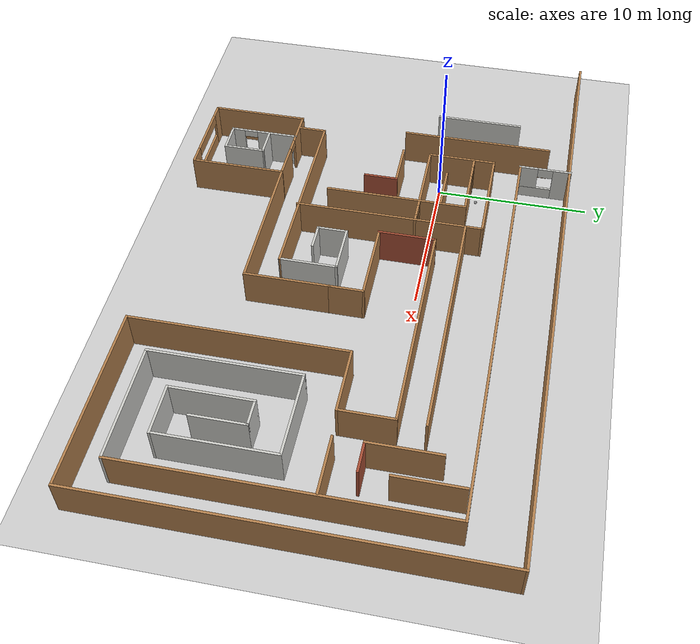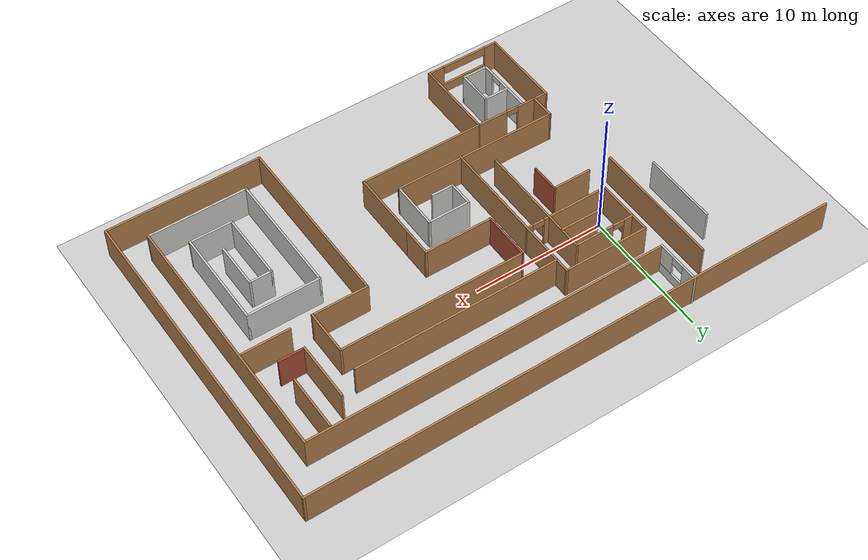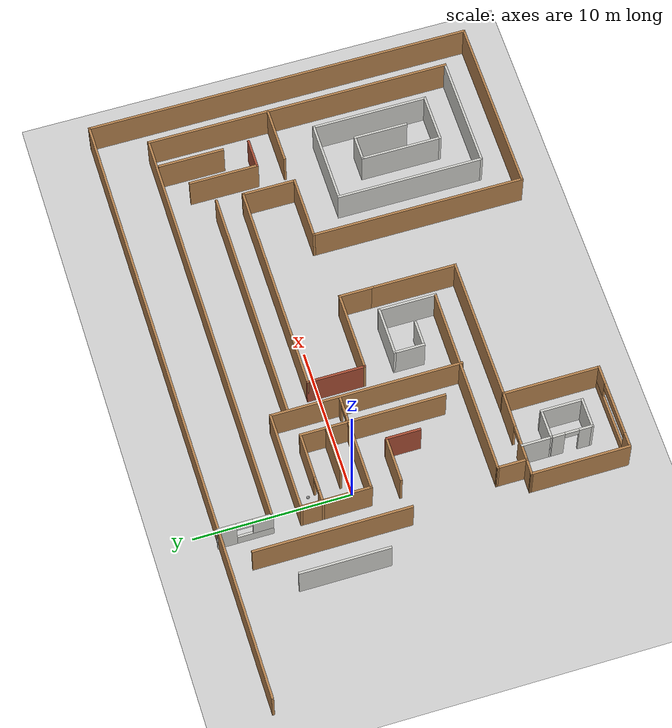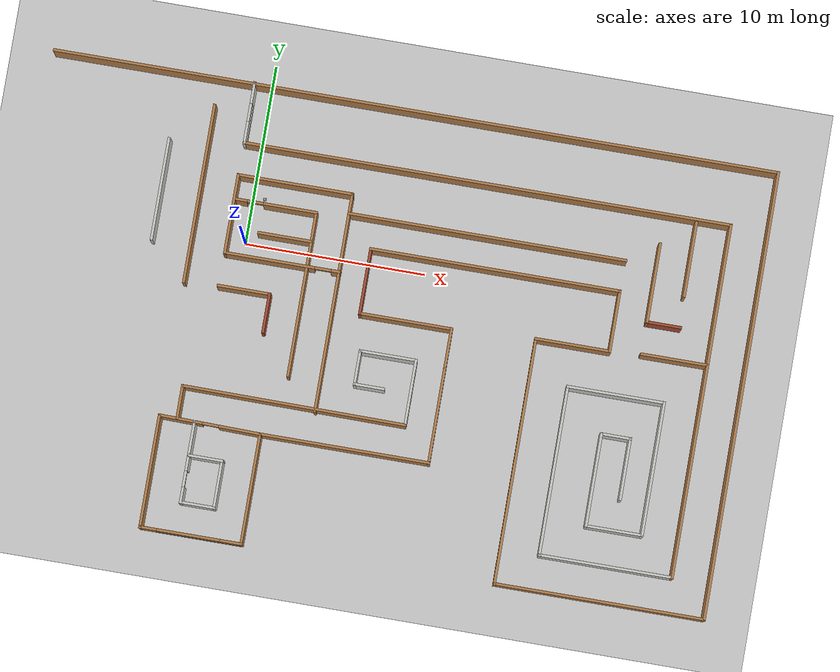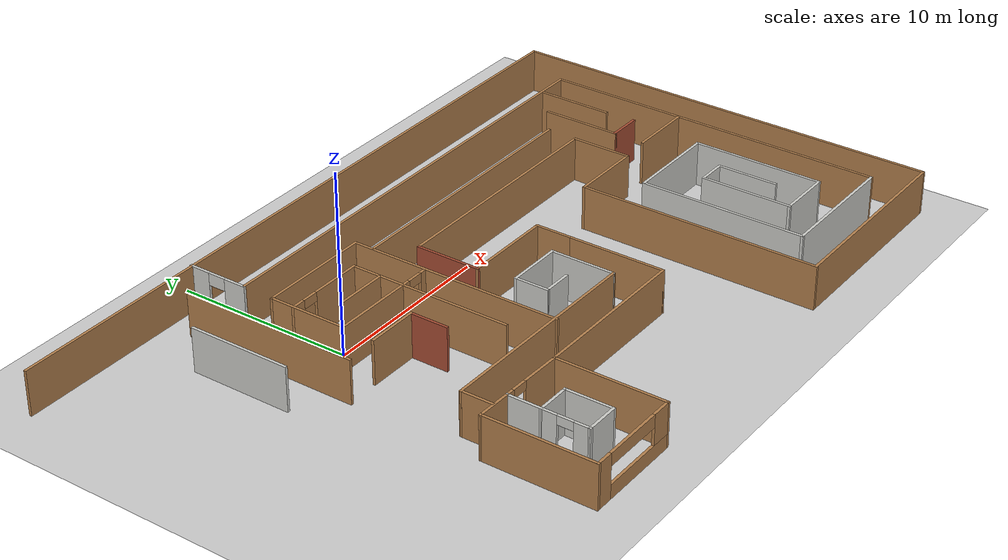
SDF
<sdf version="1.6">
 <world name="default">
  <model name="ground_plane">
   <static>1</static>
   <link name="link">
    <collision name="collision">
     <geometry><plane><normal>0 0 1</normal><size>100 100</size></plane></geometry>
     <surface><friction><ode><mu>100</mu><mu2>50</mu2></ode></friction></surface>
    </collision>
    <visual name="visual">
     <cast_shadows>0</cast_shadows>
     <geometry><plane><normal>0 0 1</normal><size>100 100</size></plane></geometry>
     <material>
      <script><uri>file://media/materials/scripts/gazebo.material</uri><name>Gazebo/Grey</name></script>
     </material>
    </visual>
   </link>
  </model>
  <model name="Building">
   <pose>5.7189 -2.01548 0 0 -0 0</pose>
   <link name="Wall_10">
    <collision name="Wall_10_Collision">
     <geometry><box><size>14 0.15 2.5</size></box></geometry>
     <pose>0 0 1.25 0 -0 0</pose>
    </collision>
    <visual name="Wall_10_Visual">
     <pose>0 0 1.25 0 -0 0</pose>
     <geometry><box><size>14 0.15 2.5</size></box></geometry>
     <material>
      <script><uri>file://media/materials/scripts/gazebo.material</uri><name>Gazebo/Wood</name></script>
      <ambient>1 1 1 1</ambient>
     </material>
     <meta><layer>0</layer></meta>
    </visual>
    <pose>8.10018 2.69968 0 0 -0 0</pose>
   </link>
   <link name="Wall_11">
    <collision name="Wall_11_Collision">
     <geometry><box><size>3.5 0.15 2.5</size></box></geometry>
     <pose>0 0 1.25 0 -0 0</pose>
    </collision>
    <visual name="Wall_11_Visual">
     <pose>0 0 1.25 0 -0 0</pose>
     <geometry><box><size>3.5 0.15 2.5</size></box></geometry>
     <material>
      <script><uri>file://media/materials/scripts/gazebo.material</uri><name>Gazebo/Wood</name></script>
      <ambient>1 1 1 1</ambient>
     </material>
     <meta><layer>0</layer></meta>
    </visual>
    <pose>15.0252 1.02468 0 0 0 -1.5708</pose>
   </link>
   <link name="Wall_12">
    <collision name="Wall_12_Collision">
     <geometry><box><size>4.25 0.15 2.5</size></box></geometry>
     <pose>0 0 1.25 0 -0 0</pose>
    </collision>
    <visual name="Wall_12_Visual">
     <pose>0 0 1.25 0 -0 0</pose>
     <geometry><box><size>4.25 0.15 2.5</size></box></geometry>
     <material>
      <script><uri>file://media/materials/scripts/gazebo.material</uri><name>Gazebo/Wood</name></script>
      <ambient>1 1 1 1</ambient>
     </material>
     <meta><layer>0</layer></meta>
    </visual>
    <pose>12.9752 -0.650318 0 0 -0 3.14159</pose>
   </link>
   <link name="Wall_13">
    <collision name="Wall_13_Collision">
     <geometry><box><size>13.75 0.15 2.5</size></box></geometry>
     <pose>0 0 1.25 0 -0 0</pose>
    </collision>
    <visual name="Wall_13_Visual">
     <pose>0 0 1.25 0 -0 0</pose>
     <geometry><box><size>13.75 0.15 2.5</size></box></geometry>
     <material>
      <script><uri>file://media/materials/scripts/gazebo.material</uri><name>Gazebo/Wood</name></script>
      <ambient>1 1 1 1</ambient>
     </material>
     <meta><layer>0</layer></meta>
    </visual>
    <pose>10.9252 -7.45032 0 0 0 -1.5708</pose>
   </link>
   <link name="Wall_14">
    <collision name="Wall_14_Collision">
     <geometry><box><size>11.75 0.15 2.5</size></box></geometry>
     <pose>0 0 1.25 0 -0 0</pose>
    </collision>
    <visual name="Wall_14_Visual">
     <pose>0 0 1.25 0 -0 0</pose>
     <geometry><box><size>11.75 0.15 2.5</size></box></geometry>
     <material>
      <script><uri>file://media/materials/scripts/gazebo.material</uri><name>Gazebo/Wood</name></script>
      <ambient>1 1 1 1</ambient>
     </material>
     <meta><layer>0</layer></meta>
    </visual>
    <pose>16.7252 -14.2503 0 0 -0 0</pose>
   </link>
   <link name="Wall_15">
    <collision name="Wall_15_Collision">
     <geometry><box><size>25 0.15 2.5</size></box></geometry>
     <pose>0 0 1.25 0 -0 0</pose>
    </collision>
    <visual name="Wall_15_Visual">
     <pose>0 0 1.25 0 -0 0</pose>
     <geometry><box><size>25 0.15 2.5</size></box></geometry>
     <material>
      <script><uri>file://media/materials/scripts/gazebo.material</uri><name>Gazebo/Wood</name></script>
      <ambient>1 1 1 1</ambient>
     </material>
     <meta><layer>0</layer></meta>
    </visual>
    <pose>22.5252 -1.82532 0 0 -0 1.5708</pose>
   </link>
   <link name="Wall_16">
    <collision name="Wall_16_Collision">
     <geometry><box><size>40.5 0.15 2.5</size></box></geometry>
     <pose>0 0 1.25 0 -0 0</pose>
    </collision>
    <visual name="Wall_16_Visual">
     <pose>0 0 1.25 0 -0 0</pose>
     <geometry><box><size>40.5 0.15 2.5</size></box></geometry>
     <material>
      <script><uri>file://media/materials/scripts/gazebo.material</uri><name>Gazebo/Wood</name></script>
      <ambient>1 1 1 1</ambient>
     </material>
     <meta><layer>0</layer></meta>
    </visual>
    <pose>2.35024 10.5999 0 0 -0 3.14158</pose>
   </link>
   <link name="Wall_2">
    <collision name="Wall_2_Collision">
     <geometry><box><size>6.35342 0.15 2.5</size></box></geometry>
     <pose>0 0 1.25 0 -0 0</pose>
    </collision>
    <visual name="Wall_2_Visual">
     <pose>0 0 1.25 0 -0 0</pose>
     <geometry><box><size>6.35342 0.15 2.5</size></box></geometry>
     <material>
      <script><uri>file://media/materials/scripts/gazebo.material</uri><name>Gazebo/Wood</name></script>
      <ambient>1 1 1 1</ambient>
     </material>
     <meta><layer>0</layer></meta>
    </visual>
    <pose>-8.6747 -11.3484 0 0 0 -1.5708</pose>
   </link>
   <link name="Wall_22">
    <pose>-5.87476 -8.29861 0 0 -0 3.12313</pose>
    <visual name="Wall_22_Visual_0">
     <pose>-1.68319 0 1.25 0 -0 0</pose>
     <geometry><box><size>2.38444 0.15 2.5</size></box></geometry>
     <material>
      <script><uri>file://media/materials/scripts/gazebo.material</uri><name>Gazebo/Wood</name></script>
      <ambient>1 1 1 1</ambient>
     </material>
     <meta><layer>0</layer></meta>
    </visual>
    <collision name="Wall_22_Collision_0">
     <geometry><box><size>2.38444 0.15 2.5</size></box></geometry>
     <pose>-1.68319 0 1.25 0 -0 0</pose>
    </collision>
    <visual name="Wall_22_Visual_1">
     <pose>1.64222 0 1.25 0 -0 0</pose>
     <geometry><box><size>2.46639 0.15 2.5</size></box></geometry>
     <material>
      <script><uri>file://media/materials/scripts/gazebo.material</uri><name>Gazebo/Wood</name></script>
      <ambient>1 1 1 1</ambient>
     </material>
     <meta><layer>0</layer></meta>
    </visual>
    <collision name="Wall_22_Collision_1">
     <geometry><box><size>2.46639 0.15 2.5</size></box></geometry>
     <pose>1.64222 0 1.25 0 -0 0</pose>
    </collision>
    <visual name="Wall_22_Visual_2">
     <pose>-0.040973 0 2.25 0 -0 0</pose>
     <geometry><box><size>0.9 0.15 0.5</size></box></geometry>
     <material>
      <script><uri>file://media/materials/scripts/gazebo.material</uri><name>Gazebo/Wood</name></script>
      <ambient>1 1 1 1</ambient>
     </material>
     <meta><layer>0</layer></meta>
    </visual>
    <collision name="Wall_22_Collision_2">
     <geometry><box><size>0.9 0.15 0.5</size></box></geometry>
     <pose>-0.040973 0 2.25 0 -0 0</pose>
    </collision>
   </link>
   <link name="Wall_24">
    <collision name="Wall_24_Collision">
     <geometry><box><size>2 0.15 2.5</size></box></geometry>
     <pose>0 0 1.25 0 -0 0</pose>
    </collision>
    <visual name="Wall_24_Visual">
     <pose>0 0 1.25 0 -0 0</pose>
     <geometry><box><size>2 0.15 2.5</size></box></geometry>
     <material>
      <script><uri>file://media/materials/scripts/gazebo.material</uri><name>Gazebo/CeilingTiled</name></script>
      <ambient>1 1 1 1</ambient>
     </material>
     <meta><layer>0</layer></meta>
    </visual>
    <pose>-6.7275 -9.22377 0 0 0 -1.57101</pose>
   </link>
   <link name="Wall_25">
    <collision name="Wall_25_Collision">
     <geometry><box><size>2 0.15 2.5</size></box></geometry>
     <pose>0 0 1.25 0 -0 0</pose>
    </collision>
    <visual name="Wall_25_Visual">
     <pose>0 0 1.25 0 -0 0</pose>
     <geometry><box><size>2 0.15 2.5</size></box></geometry>
     <material>
      <script><uri>file://media/materials/scripts/gazebo.material</uri><name>Gazebo/CeilingTiled</name></script>
      <ambient>1 1 1 1</ambient>
     </material>
     <meta><layer>0</layer></meta>
    </visual>
    <pose>-5.8027 -10.1489 0 0 -0 0</pose>
   </link>
   <link name="Wall_27">
    <collision name="Wall_27_Collision">
     <geometry><box><size>2.75 0.15 2.5</size></box></geometry>
     <pose>0 0 1.25 0 -0 0</pose>
    </collision>
    <visual name="Wall_27_Visual">
     <pose>0 0 1.25 0 -0 0</pose>
     <geometry><box><size>2.75 0.15 2.5</size></box></geometry>
     <material>
      <script><uri>file://media/materials/scripts/gazebo.material</uri><name>Gazebo/CeilingTiled</name></script>
      <ambient>1 1 1 1</ambient>
     </material>
     <meta><layer>0</layer></meta>
    </visual>
    <pose>-4.8775 -11.4488 0 0 0 -1.57064</pose>
   </link>
   <link name="Wall_28">
    <collision name="Wall_28_Collision">
     <geometry><box><size>2.0004 0.15 2.5</size></box></geometry>
     <pose>0 0 1.25 0 -0 0</pose>
    </collision>
    <visual name="Wall_28_Visual">
     <pose>0 0 1.25 0 -0 0</pose>
     <geometry><box><size>2.0004 0.15 2.5</size></box></geometry>
     <material>
      <script><uri>file://media/materials/scripts/gazebo.material</uri><name>Gazebo/CeilingTiled</name></script>
      <ambient>1 1 1 1</ambient>
     </material>
     <meta><layer>0</layer></meta>
    </visual>
    <pose>-5.8025 -12.7488 0 0 0 -3.14146</pose>
   </link>
   <link name="Wall_29">
    <pose>-6.7277 -11.4489 0 0 -0 1.5708</pose>
    <visual name="Wall_29_Visual_0">
     <pose>-0.915206 0 1.25 0 -0 0</pose>
     <geometry><box><size>0.919835 0.15 2.5</size></box></geometry>
     <material>
      <script><uri>file://media/materials/scripts/gazebo.material</uri><name>Gazebo/CeilingTiled</name></script>
      <ambient>1 1 1 1</ambient>
     </material>
     <meta><layer>0</layer></meta>
    </visual>
    <collision name="Wall_29_Collision_0">
     <geometry><box><size>0.919835 0.15 2.5</size></box></geometry>
     <pose>-0.915206 0 1.25 0 -0 0</pose>
    </collision>
    <visual name="Wall_29_Visual_1">
     <pose>0.909917 0 1.25 0 -0 0</pose>
     <geometry><box><size>0.930411 0.15 2.5</size></box></geometry>
     <material>
      <script><uri>file://media/materials/scripts/gazebo.material</uri><name>Gazebo/CeilingTiled</name></script>
      <ambient>1 1 1 1</ambient>
     </material>
     <meta><layer>0</layer></meta>
    </visual>
    <collision name="Wall_29_Collision_1">
     <geometry><box><size>0.930411 0.15 2.5</size></box></geometry>
     <pose>0.909917 0 1.25 0 -0 0</pose>
    </collision>
    <visual name="Wall_29_Visual_2">
     <pose>-0.005288 0 2.25 0 -0 0</pose>
     <geometry><box><size>0.9 0.15 0.5</size></box></geometry>
     <material>
      <script><uri>file://media/materials/scripts/gazebo.material</uri><name>Gazebo/CeilingTiled</name></script>
      <ambient>1 1 1 1</ambient>
     </material>
     <meta><layer>0</layer></meta>
    </visual>
    <collision name="Wall_29_Collision_2">
     <geometry><box><size>0.9 0.15 0.5</size></box></geometry>
     <pose>-0.005288 0 2.25 0 -0 0</pose>
    </collision>
   </link>
   <link name="Wall_3">
    <pose>-5.8747 -14.4499 0 0 -0 0</pose>
    <visual name="Wall_3_Visual_0">
     <pose>-2.37464 0 1.25 0 -0 0</pose>
     <geometry><box><size>1.00072 0.15 2.5</size></box></geometry>
     <material>
      <script><uri>file://media/materials/scripts/gazebo.material</uri><name>Gazebo/Wood</name></script>
      <ambient>1 1 1 1</ambient>
     </material>
     <meta><layer>0</layer></meta>
    </visual>
    <collision name="Wall_3_Collision_0">
     <geometry><box><size>1.00072 0.15 2.5</size></box></geometry>
     <pose>-2.37464 0 1.25 0 -0 0</pose>
    </collision>
    <visual name="Wall_3_Visual_1">
     <pose>0.50036 0 0.4 0 -0 0</pose>
     <geometry><box><size>4.74928 0.15 0.8</size></box></geometry>
     <material>
      <script><uri>file://media/materials/scripts/gazebo.material</uri><name>Gazebo/Wood</name></script>
      <ambient>1 1 1 1</ambient>
     </material>
     <meta><layer>0</layer></meta>
    </visual>
    <collision name="Wall_3_Collision_1">
     <geometry><box><size>4.74928 0.15 0.8</size></box></geometry>
     <pose>0.50036 0 0.4 0 -0 0</pose>
    </collision>
    <visual name="Wall_3_Visual_2">
     <pose>2.25036 0 1.65 0 -0 0</pose>
     <geometry><box><size>1.24928 0.15 1.7</size></box></geometry>
     <material>
      <script><uri>file://media/materials/scripts/gazebo.material</uri><name>Gazebo/Wood</name></script>
      <ambient>1 1 1 1</ambient>
     </material>
     <meta><layer>0</layer></meta>
    </visual>
    <collision name="Wall_3_Collision_2">
     <geometry><box><size>1.24928 0.15 1.7</size></box></geometry>
     <pose>2.25036 0 1.65 0 -0 0</pose>
    </collision>
    <visual name="Wall_3_Visual_3">
     <pose>-0.124281 0 2.15 0 -0 0</pose>
     <geometry><box><size>3.5 0.15 0.7</size></box></geometry>
     <material>
      <script><uri>file://media/materials/scripts/gazebo.material</uri><name>Gazebo/Wood</name></script>
      <ambient>1 1 1 1</ambient>
     </material>
     <meta><layer>0</layer></meta>
    </visual>
    <collision name="Wall_3_Collision_3">
     <geometry><box><size>3.5 0.15 0.7</size></box></geometry>
     <pose>-0.124281 0 2.15 0 -0 0</pose>
    </collision>
   </link>
   <link name="Wall_31">
    <collision name="Wall_31_Collision">
     <geometry><box><size>1.94917 0.15 2.5</size></box></geometry>
     <pose>0 0 1.25 0 -0 0</pose>
    </collision>
    <visual name="Wall_31_Visual">
     <pose>0 0 1.25 0 -0 0</pose>
     <geometry><box><size>1.94917 0.15 2.5</size></box></geometry>
     <material>
      <script><uri>file://media/materials/scripts/gazebo.material</uri><name>Gazebo/Wood</name></script>
      <ambient>1 1 1 1</ambient>
     </material>
     <meta><layer>0</layer></meta>
    </visual>
    <pose>-7.6987 -7.3474 0 0 -0 1.5708</pose>
   </link>
   <link name="Wall_32">
    <collision name="Wall_32_Collision">
     <geometry><box><size>12.5011 0.15 2.5</size></box></geometry>
     <pose>0 0 1.25 0 -0 0</pose>
    </collision>
    <visual name="Wall_32_Visual">
     <pose>0 0 1.25 0 -0 0</pose>
     <geometry><box><size>12.5011 0.15 2.5</size></box></geometry>
     <material>
      <script><uri>file://media/materials/scripts/gazebo.material</uri><name>Gazebo/Wood</name></script>
      <ambient>1 1 1 1</ambient>
     </material>
     <meta><layer>0</layer></meta>
    </visual>
    <pose>-1.52347 -6.48873 0 0 0 -0.006612</pose>
   </link>
   <link name="Wall_33">
    <collision name="Wall_33_Collision">
     <geometry><box><size>3.75 0.15 2.5</size></box></geometry>
     <pose>0 0 1.25 0 -0 0</pose>
    </collision>
    <visual name="Wall_33_Visual">
     <pose>0 0 1.25 0 -0 0</pose>
     <geometry><box><size>3.75 0.15 2.5</size></box></geometry>
     <material>
      <script><uri>file://media/materials/scripts/gazebo.material</uri><name>Gazebo/CeilingTiled</name></script>
      <ambient>1 1 1 1</ambient>
     </material>
     <meta><layer>0</layer></meta>
    </visual>
    <pose>4.65177 -4.72956 0 0 -0 1.5708</pose>
   </link>
   <link name="Wall_34">
    <collision name="Wall_34_Collision">
     <geometry><box><size>3.25 0.15 2.5</size></box></geometry>
     <pose>0 0 1.25 0 -0 0</pose>
    </collision>
    <visual name="Wall_34_Visual">
     <pose>0 0 1.25 0 -0 0</pose>
     <geometry><box><size>3.25 0.15 2.5</size></box></geometry>
     <material>
      <script><uri>file://media/materials/scripts/gazebo.material</uri><name>Gazebo/CeilingTiled</name></script>
      <ambient>1 1 1 1</ambient>
     </material>
     <meta><layer>0</layer></meta>
    </visual>
    <pose>3.10177 -2.92956 0 0 -0 3.14159</pose>
   </link>
   <link name="Wall_35">
    <collision name="Wall_35_Collision">
     <geometry><box><size>2 0.15 2.5</size></box></geometry>
     <pose>0 0 1.25 0 -0 0</pose>
    </collision>
    <visual name="Wall_35_Visual">
     <pose>0 0 1.25 0 -0 0</pose>
     <geometry><box><size>2 0.15 2.5</size></box></geometry>
     <material>
      <script><uri>file://media/materials/scripts/gazebo.material</uri><name>Gazebo/CeilingTiled</name></script>
      <ambient>1 1 1 1</ambient>
     </material>
     <meta><layer>0</layer></meta>
    </visual>
    <pose>1.55177 -3.85456 0 0 0 -1.5708</pose>
   </link>
   <link name="Wall_36">
    <collision name="Wall_36_Collision">
     <geometry><box><size>1.75 0.15 2.5</size></box></geometry>
     <pose>0 0 1.25 0 -0 0</pose>
    </collision>
    <visual name="Wall_36_Visual">
     <pose>0 0 1.25 0 -0 0</pose>
     <geometry><box><size>1.75 0.15 2.5</size></box></geometry>
     <material>
      <script><uri>file://media/materials/scripts/gazebo.material</uri><name>Gazebo/CeilingTiled</name></script>
      <ambient>1 1 1 1</ambient>
     </material>
     <meta><layer>0</layer></meta>
    </visual>
    <pose>2.35177 -4.77956 0 0 -0 0</pose>
   </link>
   <link name="Wall_38">
    <collision name="Wall_38_Collision">
     <geometry><box><size>12.25 0.15 2.5</size></box></geometry>
     <pose>0 0 1.25 0 -0 0</pose>
    </collision>
    <visual name="Wall_38_Visual">
     <pose>0 0 1.25 0 -0 0</pose>
     <geometry><box><size>12.25 0.15 2.5</size></box></geometry>
     <material>
      <script><uri>file://media/materials/scripts/gazebo.material</uri><name>Gazebo/Wood</name></script>
      <ambient>1 1 1 1</ambient>
     </material>
     <meta><layer>0</layer></meta>
    </visual>
    <pose>-0.3357 -0.549898 0 0 -0 1.5708</pose>
   </link>
   <link name="Wall_39">
    <collision name="Wall_39_Collision">
     <geometry><box><size>6.5 0.15 2.5</size></box></geometry>
     <pose>0 0 1.25 0 -0 0</pose>
    </collision>
    <visual name="Wall_39_Visual">
     <pose>0 0 1.25 0 -0 0</pose>
     <geometry><box><size>6.5 0.15 2.5</size></box></geometry>
     <material>
      <script><uri>file://media/materials/scripts/gazebo.material</uri><name>Gazebo/Wood</name></script>
      <ambient>1 1 1 1</ambient>
     </material>
     <meta><layer>0</layer></meta>
    </visual>
    <pose>-3.51051 5.50029 0 0 -0 3.14153</pose>
   </link>
   <link name="Wall_4">
    <collision name="Wall_4_Collision">
     <geometry><box><size>6.25 0.15 2.5</size></box></geometry>
     <pose>0 0 1.25 0 -0 0</pose>
    </collision>
    <visual name="Wall_4_Visual">
     <pose>0 0 1.25 0 -0 0</pose>
     <geometry><box><size>6.25 0.15 2.5</size></box></geometry>
     <material>
      <script><uri>file://media/materials/scripts/gazebo.material</uri><name>Gazebo/Wood</name></script>
      <ambient>1 1 1 1</ambient>
     </material>
     <meta><layer>0</layer></meta>
    </visual>
    <pose>-3.07476 -11.4001 0 0 -0 1.57082</pose>
   </link>
   <link name="Wall_40">
    <collision name="Wall_40_Collision">
     <geometry><box><size>4.5 0.15 2.5</size></box></geometry>
     <pose>0 0 1.25 0 -0 0</pose>
    </collision>
    <visual name="Wall_40_Visual">
     <pose>0 0 1.25 0 -0 0</pose>
     <geometry><box><size>4.5 0.15 2.5</size></box></geometry>
     <material>
      <script><uri>file://media/materials/scripts/gazebo.material</uri><name>Gazebo/Wood</name></script>
      <ambient>1 1 1 1</ambient>
     </material>
     <meta><layer>0</layer></meta>
    </visual>
    <pose>-6.68532 3.32548 0 0 0 -1.5708</pose>
   </link>
   <link name="Wall_41">
    <pose>-3.51032 1.15048 0 0 -0 0</pose>
    <visual name="Wall_41_Visual_0">
     <pose>-0.707511 0 1.25 0 -0 0</pose>
     <geometry><box><size>5.08498 0.15 2.5</size></box></geometry>
     <material>
      <script><uri>file://media/materials/scripts/gazebo.material</uri><name>Gazebo/Wood</name></script>
      <ambient>1 1 1 1</ambient>
     </material>
     <meta><layer>0</layer></meta>
    </visual>
    <collision name="Wall_41_Collision_0">
     <geometry><box><size>5.08498 0.15 2.5</size></box></geometry>
     <pose>-0.707511 0 1.25 0 -0 0</pose>
    </collision>
    <visual name="Wall_41_Visual_1">
     <pose>2.99249 0 1.25 0 -0 0</pose>
     <geometry><box><size>0.515021 0.15 2.5</size></box></geometry>
     <material>
      <script><uri>file://media/materials/scripts/gazebo.material</uri><name>Gazebo/Wood</name></script>
      <ambient>1 1 1 1</ambient>
     </material>
     <meta><layer>0</layer></meta>
    </visual>
    <collision name="Wall_41_Collision_1">
     <geometry><box><size>0.515021 0.15 2.5</size></box></geometry>
     <pose>2.99249 0 1.25 0 -0 0</pose>
    </collision>
    <visual name="Wall_41_Visual_2">
     <pose>2.28498 0 2.25 0 -0 0</pose>
     <geometry><box><size>0.9 0.15 0.5</size></box></geometry>
     <material>
      <script><uri>file://media/materials/scripts/gazebo.material</uri><name>Gazebo/Wood</name></script>
      <ambient>1 1 1 1</ambient>
     </material>
     <meta><layer>0</layer></meta>
    </visual>
    <collision name="Wall_41_Collision_2">
     <geometry><box><size>0.9 0.15 0.5</size></box></geometry>
     <pose>2.28498 0 2.25 0 -0 0</pose>
    </collision>
   </link>
   <link name="Wall_43">
    <collision name="Wall_43_Collision">
     <geometry><box><size>9.25 0.15 2.5</size></box></geometry>
     <pose>0 0 1.25 0 -0 0</pose>
    </collision>
    <visual name="Wall_43_Visual">
     <pose>0 0 1.25 0 -0 0</pose>
     <geometry><box><size>9.25 0.15 2.5</size></box></geometry>
     <material>
      <script><uri>file://media/materials/scripts/gazebo.material</uri><name>Gazebo/Wood</name></script>
      <ambient>1 1 1 1</ambient>
     </material>
     <meta><layer>0</layer></meta>
    </visual>
    <pose>-2.1157 -0.387898 0 0 0 -1.5708</pose>
   </link>
   <link name="Wall_47">
    <collision name="Wall_47_Collision">
     <geometry><box><size>3 0.15 2.5</size></box></geometry>
     <pose>0 0 1.25 0 -0 0</pose>
    </collision>
    <visual name="Wall_47_Visual">
     <pose>0 0 1.25 0 -0 0</pose>
     <geometry><box><size>3 0.15 2.5</size></box></geometry>
     <material>
      <script><uri>file://media/materials/scripts/gazebo.material</uri><name>Gazebo/Wood</name></script>
      <ambient>1 1 1 1</ambient>
     </material>
     <meta><layer>0</layer></meta>
    </visual>
    <pose>-3.60317 2.54344 0 0 -0 0</pose>
   </link>
   <link name="Wall_5">
    <collision name="Wall_5_Collision">
     <geometry><box><size>9.5 0.15 2.5</size></box></geometry>
     <pose>0 0 1.25 0 -0 0</pose>
    </collision>
    <visual name="Wall_5_Visual">
     <pose>0 0 1.25 0 -0 0</pose>
     <geometry><box><size>9.5 0.15 2.5</size></box></geometry>
     <material>
      <script><uri>file://media/materials/scripts/gazebo.material</uri><name>Gazebo/Wood</name></script>
      <ambient>1 1 1 1</ambient>
     </material>
     <meta><layer>0</layer></meta>
    </visual>
    <pose>1.60018 -8.35032 0 0 -0 0</pose>
   </link>
   <link name="Wall_50">
    <pose>-4.4007 4.1621 0 0 -0 3.14159</pose>
    <visual name="Wall_50_Visual_0">
     <pose>-0.848534 0 1.25 0 -0 0</pose>
     <geometry><box><size>3.02293 0.15 2.5</size></box></geometry>
     <material>
      <script><uri>file://media/materials/scripts/gazebo.material</uri><name>Gazebo/Wood</name></script>
      <ambient>1 1 1 1</ambient>
     </material>
     <meta><layer>0</layer></meta>
    </visual>
    <collision name="Wall_50_Collision_0">
     <geometry><box><size>3.02293 0.15 2.5</size></box></geometry>
     <pose>-0.848534 0 1.25 0 -0 0</pose>
    </collision>
    <visual name="Wall_50_Visual_1">
     <pose>1.96147 0 1.25 0 -0 0</pose>
     <geometry><box><size>0.797068 0.15 2.5</size></box></geometry>
     <material>
      <script><uri>file://media/materials/scripts/gazebo.material</uri><name>Gazebo/Wood</name></script>
      <ambient>1 1 1 1</ambient>
     </material>
     <meta><layer>0</layer></meta>
    </visual>
    <collision name="Wall_50_Collision_1">
     <geometry><box><size>0.797068 0.15 2.5</size></box></geometry>
     <pose>1.96147 0 1.25 0 -0 0</pose>
    </collision>
    <visual name="Wall_50_Visual_2">
     <pose>1.11293 0 2.25 0 -0 0</pose>
     <geometry><box><size>0.9 0.15 0.5</size></box></geometry>
     <material>
      <script><uri>file://media/materials/scripts/gazebo.material</uri><name>Gazebo/Wood</name></script>
      <ambient>1 1 1 1</ambient>
     </material>
     <meta><layer>0</layer></meta>
    </visual>
    <collision name="Wall_50_Collision_2">
     <geometry><box><size>0.9 0.15 0.5</size></box></geometry>
     <pose>1.11293 0 2.25 0 -0 0</pose>
    </collision>
   </link>
   <link name="Wall_54">
    <collision name="Wall_54_Collision">
     <geometry><box><size>3 0.15 2.5</size></box></geometry>
     <pose>0 0 1.25 0 -0 0</pose>
    </collision>
    <visual name="Wall_54_Visual">
     <pose>0 0 1.25 0 -0 0</pose>
     <geometry><box><size>3 0.15 2.5</size></box></geometry>
     <material>
      <script><uri>file://media/materials/scripts/gazebo.material</uri><name>Gazebo/Wood</name></script>
      <ambient>1 1 1 1</ambient>
     </material>
     <meta><layer>0</layer></meta>
    </visual>
    <pose>-5.3023 -0.693004 0 0 -0 0</pose>
   </link>
   <link name="Wall_55">
    <collision name="Wall_55_Collision">
     <geometry><box><size>2.25 0.15 2.5</size></box></geometry>
     <pose>0 0 1.25 0 -0 0</pose>
    </collision>
    <visual name="Wall_55_Visual">
     <pose>0 0 1.25 0 -0 0</pose>
     <geometry><box><size>2.25 0.15 2.5</size></box></geometry>
     <material>
      <script><uri>file://media/materials/scripts/gazebo.material</uri><name>Gazebo/Bricks</name></script>
      <ambient>1 1 1 1</ambient>
     </material>
     <meta><layer>0</layer></meta>
    </visual>
    <pose>-3.8773 -1.743 0 0 0 -1.5708</pose>
   </link>
   <link name="Wall_59">
    <collision name="Wall_59_Collision">
     <geometry><box><size>10 0.15 2.5</size></box></geometry>
     <pose>0 0 1.25 0 -0 0</pose>
    </collision>
    <visual name="Wall_59_Visual">
     <pose>0 0 1.25 0 -0 0</pose>
     <geometry><box><size>10 0.15 2.5</size></box></geometry>
     <material>
      <script><uri>file://media/materials/scripts/gazebo.material</uri><name>Gazebo/Wood</name></script>
      <ambient>1 1 1 1</ambient>
     </material>
     <meta><layer>0</layer></meta>
    </visual>
    <pose>-8.6273 4.132 0 0 0 -1.5708</pose>
   </link>
   <link name="Wall_6">
    <collision name="Wall_6_Collision">
     <geometry><box><size>5.5 0.15 2.5</size></box></geometry>
     <pose>0 0 1.25 0 -0 0</pose>
    </collision>
    <visual name="Wall_6_Visual">
     <pose>0 0 1.25 0 -0 0</pose>
     <geometry><box><size>5.5 0.15 2.5</size></box></geometry>
     <material>
      <script><uri>file://media/materials/scripts/gazebo.material</uri><name>Gazebo/Wood</name></script>
      <ambient>1 1 1 1</ambient>
     </material>
     <meta><layer>0</layer></meta>
    </visual>
    <pose>6.27518 -5.67532 0 0 -0 1.5708</pose>
   </link>
   <link name="Wall_64">
    <collision name="Wall_64_Collision">
     <geometry><box><size>5.75 0.15 2.5</size></box></geometry>
     <pose>0 0 1.25 0 -0 0</pose>
    </collision>
    <visual name="Wall_64_Visual">
     <pose>0 0 1.25 0 -0 0</pose>
     <geometry><box><size>5.75 0.15 2.5</size></box></geometry>
     <material>
      <script><uri>file://media/materials/scripts/gazebo.material</uri><name>Gazebo/CeilingTiled</name></script>
      <ambient>1 1 1 1</ambient>
     </material>
     <meta><layer>0</layer></meta>
    </visual>
    <pose>-10.7799 4.02609 0 0 0 -1.57072</pose>
   </link>
   <link name="Wall_7">
    <collision name="Wall_7_Collision">
     <geometry><box><size>2.25 0.15 2.5</size></box></geometry>
     <pose>0 0 1.25 0 -0 0</pose>
    </collision>
    <visual name="Wall_7_Visual">
     <pose>0 0 1.25 0 -0 0</pose>
     <geometry><box><size>2.25 0.15 2.5</size></box></geometry>
     <material>
      <script><uri>file://media/materials/scripts/gazebo.material</uri><name>Gazebo/Wood</name></script>
      <ambient>1 1 1 1</ambient>
     </material>
     <meta><layer>0</layer></meta>
    </visual>
    <pose>6.27518 -1.95032 0 0 -0 1.5708</pose>
   </link>
   <link name="Wall_72">
    <pose>-6.67034 8.98047 0 0 0 -1.5708</pose>
    <visual name="Wall_72_Visual_0">
     <pose>-1.13563 0 1.25 0 -0 0</pose>
     <geometry><box><size>1.22874 0.15 2.5</size></box></geometry>
     <material>
      <script><uri>file://media/materials/scripts/gazebo.material</uri><name>Gazebo/CeilingTiled</name></script>
      <ambient>1 1 1 1</ambient>
     </material>
     <meta><layer>0</layer></meta>
    </visual>
    <collision name="Wall_72_Collision_0">
     <geometry><box><size>1.22874 0.15 2.5</size></box></geometry>
     <pose>-1.13563 0 1.25 0 -0 0</pose>
    </collision>
    <visual name="Wall_72_Visual_1">
     <pose>0.614371 0 0.4 0 -0 0</pose>
     <geometry><box><size>2.27126 0.15 0.8</size></box></geometry>
     <material>
      <script><uri>file://media/materials/scripts/gazebo.material</uri><name>Gazebo/CeilingTiled</name></script>
      <ambient>1 1 1 1</ambient>
     </material>
     <meta><layer>0</layer></meta>
    </visual>
    <collision name="Wall_72_Collision_1">
     <geometry><box><size>2.27126 0.15 0.8</size></box></geometry>
     <pose>0.614371 0 0.4 0 -0 0</pose>
    </collision>
    <visual name="Wall_72_Visual_2">
     <pose>1.11437 0 1.65 0 -0 0</pose>
     <geometry><box><size>1.27126 0.15 1.7</size></box></geometry>
     <material>
      <script><uri>file://media/materials/scripts/gazebo.material</uri><name>Gazebo/CeilingTiled</name></script>
      <ambient>1 1 1 1</ambient>
     </material>
     <meta><layer>0</layer></meta>
    </visual>
    <collision name="Wall_72_Collision_2">
     <geometry><box><size>1.27126 0.15 1.7</size></box></geometry>
     <pose>1.11437 0 1.65 0 -0 0</pose>
    </collision>
    <visual name="Wall_72_Visual_3">
     <pose>-0.021258 0 2.15 0 -0 0</pose>
     <geometry><box><size>1 0.15 0.7</size></box></geometry>
     <material>
      <script><uri>file://media/materials/scripts/gazebo.material</uri><name>Gazebo/CeilingTiled</name></script>
      <ambient>1 1 1 1</ambient>
     </material>
     <meta><layer>0</layer></meta>
    </visual>
    <collision name="Wall_72_Collision_3">
     <geometry><box><size>1 0.15 0.7</size></box></geometry>
     <pose>-0.021258 0 2.15 0 -0 0</pose>
    </collision>
   </link>
   <link name="Wall_73">
    <collision name="Wall_73_Collision">
     <geometry><box><size>27.25 0.15 2.5</size></box></geometry>
     <pose>0 0 1.25 0 -0 0</pose>
    </collision>
    <visual name="Wall_73_Visual">
     <pose>0 0 1.25 0 -0 0</pose>
     <geometry><box><size>27.25 0.15 2.5</size></box></geometry>
     <material>
      <script><uri>file://media/materials/scripts/gazebo.material</uri><name>Gazebo/Wood</name></script>
      <ambient>1 1 1 1</ambient>
     </material>
     <meta><layer>0</layer></meta>
    </visual>
    <pose>6.87966 7.30548 0 0 -0 0</pose>
   </link>
   <link name="Wall_74">
    <collision name="Wall_74_Collision">
     <geometry><box><size>19.75 0.15 2.5</size></box></geometry>
     <pose>0 0 1.25 0 -0 0</pose>
    </collision>
    <visual name="Wall_74_Visual">
     <pose>0 0 1.25 0 -0 0</pose>
     <geometry><box><size>19.75 0.15 2.5</size></box></geometry>
     <material>
      <script><uri>file://media/materials/scripts/gazebo.material</uri><name>Gazebo/Wood</name></script>
      <ambient>1 1 1 1</ambient>
     </material>
     <meta><layer>0</layer></meta>
    </visual>
    <pose>20.4297 -2.49453 0 0 0 -1.5708</pose>
   </link>
   <link name="Wall_75">
    <collision name="Wall_75_Collision">
     <geometry><box><size>7.5 0.15 2.5</size></box></geometry>
     <pose>0 0 1.25 0 -0 0</pose>
    </collision>
    <visual name="Wall_75_Visual">
     <pose>0 0 1.25 0 -0 0</pose>
     <geometry><box><size>7.5 0.15 2.5</size></box></geometry>
     <material>
      <script><uri>file://media/materials/scripts/gazebo.material</uri><name>Gazebo/CeilingTiled</name></script>
      <ambient>1 1 1 1</ambient>
     </material>
     <meta><layer>0</layer></meta>
    </visual>
    <pose>16.7547 -12.2945 0 0 -0 3.14159</pose>
   </link>
   <link name="Wall_76">
    <collision name="Wall_76_Collision">
     <geometry><box><size>9.5 0.15 2.5</size></box></geometry>
     <pose>0 0 1.25 0 -0 0</pose>
    </collision>
    <visual name="Wall_76_Visual">
     <pose>0 0 1.25 0 -0 0</pose>
     <geometry><box><size>9.5 0.15 2.5</size></box></geometry>
     <material>
      <script><uri>file://media/materials/scripts/gazebo.material</uri><name>Gazebo/CeilingTiled</name></script>
      <ambient>1 1 1 1</ambient>
     </material>
     <meta><layer>0</layer></meta>
    </visual>
    <pose>13.0797 -7.61953 0 0 -0 1.5708</pose>
   </link>
   <link name="Wall_77">
    <collision name="Wall_77_Collision">
     <geometry><box><size>5.5 0.15 2.5</size></box></geometry>
     <pose>0 0 1.25 0 -0 0</pose>
    </collision>
    <visual name="Wall_77_Visual">
     <pose>0 0 1.25 0 -0 0</pose>
     <geometry><box><size>5.5 0.15 2.5</size></box></geometry>
     <material>
      <script><uri>file://media/materials/scripts/gazebo.material</uri><name>Gazebo/CeilingTiled</name></script>
      <ambient>1 1 1 1</ambient>
     </material>
     <meta><layer>0</layer></meta>
    </visual>
    <pose>15.7547 -2.94453 0 0 -0 0</pose>
   </link>
   <link name="Wall_78">
    <collision name="Wall_78_Collision">
     <geometry><box><size>7.5 0.15 2.5</size></box></geometry>
     <pose>0 0 1.25 0 -0 0</pose>
    </collision>
    <visual name="Wall_78_Visual">
     <pose>0 0 1.25 0 -0 0</pose>
     <geometry><box><size>7.5 0.15 2.5</size></box></geometry>
     <material>
      <script><uri>file://media/materials/scripts/gazebo.material</uri><name>Gazebo/CeilingTiled</name></script>
      <ambient>1 1 1 1</ambient>
     </material>
     <meta><layer>0</layer></meta>
    </visual>
    <pose>18.4297 -6.61953 0 0 0 -1.5708</pose>
   </link>
   <link name="Wall_79">
    <collision name="Wall_79_Collision">
     <geometry><box><size>3.25 0.15 2.5</size></box></geometry>
     <pose>0 0 1.25 0 -0 0</pose>
    </collision>
    <visual name="Wall_79_Visual">
     <pose>0 0 1.25 0 -0 0</pose>
     <geometry><box><size>3.25 0.15 2.5</size></box></geometry>
     <material>
      <script><uri>file://media/materials/scripts/gazebo.material</uri><name>Gazebo/CeilingTiled</name></script>
      <ambient>1 1 1 1</ambient>
     </material>
     <meta><layer>0</layer></meta>
    </visual>
    <pose>16.8797 -10.2945 0 0 -0 3.14159</pose>
   </link>
   <link name="Wall_8">
    <collision name="Wall_8_Collision">
     <geometry><box><size>5.25 0.15 2.5</size></box></geometry>
     <pose>0 0 1.25 0 -0 0</pose>
    </collision>
    <visual name="Wall_8_Visual">
     <pose>0 0 1.25 0 -0 0</pose>
     <geometry><box><size>5.25 0.15 2.5</size></box></geometry>
     <material>
      <script><uri>file://media/materials/scripts/gazebo.material</uri><name>Gazebo/Wood</name></script>
      <ambient>1 1 1 1</ambient>
     </material>
     <meta><layer>0</layer></meta>
    </visual>
    <pose>3.72518 -0.900318 0 0 -0 3.14159</pose>
   </link>
   <link name="Wall_80">
    <collision name="Wall_80_Collision">
     <geometry><box><size>5.25 0.15 2.5</size></box></geometry>
     <pose>0 0 1.25 0 -0 0</pose>
    </collision>
    <visual name="Wall_80_Visual">
     <pose>0 0 1.25 0 -0 0</pose>
     <geometry><box><size>5.25 0.15 2.5</size></box></geometry>
     <material>
      <script><uri>file://media/materials/scripts/gazebo.material</uri><name>Gazebo/CeilingTiled</name></script>
      <ambient>1 1 1 1</ambient>
     </material>
     <meta><layer>0</layer></meta>
    </visual>
    <pose>15.3297 -7.74453 0 0 -0 1.5708</pose>
   </link>
   <link name="Wall_81">
    <collision name="Wall_81_Collision">
     <geometry><box><size>1.75 0.15 2.5</size></box></geometry>
     <pose>0 0 1.25 0 -0 0</pose>
    </collision>
    <visual name="Wall_81_Visual">
     <pose>0 0 1.25 0 -0 0</pose>
     <geometry><box><size>1.75 0.15 2.5</size></box></geometry>
     <material>
      <script><uri>file://media/materials/scripts/gazebo.material</uri><name>Gazebo/CeilingTiled</name></script>
      <ambient>1 1 1 1</ambient>
     </material>
     <meta><layer>0</layer></meta>
    </visual>
    <pose>16.1297 -5.19453 0 0 -0 0</pose>
   </link>
   <link name="Wall_82">
    <collision name="Wall_82_Collision">
     <geometry><box><size>3.5 0.15 2.5</size></box></geometry>
     <pose>0 0 1.25 0 -0 0</pose>
    </collision>
    <visual name="Wall_82_Visual">
     <pose>0 0 1.25 0 -0 0</pose>
     <geometry><box><size>3.5 0.15 2.5</size></box></geometry>
     <material>
      <script><uri>file://media/materials/scripts/gazebo.material</uri><name>Gazebo/CeilingTiled</name></script>
      <ambient>1 1 1 1</ambient>
     </material>
     <meta><layer>0</layer></meta>
    </visual>
    <pose>16.9297 -6.86953 0 0 0 -1.5708</pose>
   </link>
   <link name="Wall_84">
    <collision name="Wall_84_Collision">
     <geometry><box><size>3.75 0.15 2.5</size></box></geometry>
     <pose>0 0 1.25 0 -0 0</pose>
    </collision>
    <visual name="Wall_84_Visual">
     <pose>0 0 1.25 0 -0 0</pose>
     <geometry><box><size>3.75 0.15 2.5</size></box></geometry>
     <material>
      <script><uri>file://media/materials/scripts/gazebo.material</uri><name>Gazebo/Wood</name></script>
      <ambient>1 1 1 1</ambient>
     </material>
     <meta><layer>0</layer></meta>
    </visual>
    <pose>18.5777 -0.510265 0 0 -0 0</pose>
   </link>
   <link name="Wall_86">
    <collision name="Wall_86_Collision">
     <geometry><box><size>4.5 0.15 2.5</size></box></geometry>
     <pose>0 0 1.25 0 -0 0</pose>
    </collision>
    <visual name="Wall_86_Visual">
     <pose>0 0 1.25 0 -0 0</pose>
     <geometry><box><size>4.5 0.15 2.5</size></box></geometry>
     <material>
      <script><uri>file://media/materials/scripts/gazebo.material</uri><name>Gazebo/Wood</name></script>
      <ambient>1 1 1 1</ambient>
     </material>
     <meta><layer>0</layer></meta>
    </visual>
    <pose>16.7777 3.45589 0 0 0 -1.5708</pose>
   </link>
   <link name="Wall_87">
    <collision name="Wall_87_Collision">
     <geometry><box><size>2 0.15 2.5</size></box></geometry>
     <pose>0 0 1.25 0 -0 0</pose>
    </collision>
    <visual name="Wall_87_Visual">
     <pose>0 0 1.25 0 -0 0</pose>
     <geometry><box><size>2 0.15 2.5</size></box></geometry>
     <material>
      <script><uri>file://media/materials/scripts/gazebo.material</uri><name>Gazebo/Bricks</name></script>
      <ambient>1 1 1 1</ambient>
     </material>
     <meta><layer>0</layer></meta>
    </visual>
    <pose>17.7027 1.28089 0 0 -0 0</pose>
   </link>
   <link name="Wall_89">
    <collision name="Wall_89_Collision">
     <geometry><box><size>4.25 0.15 2.5</size></box></geometry>
     <pose>0 0 1.25 0 -0 0</pose>
    </collision>
    <visual name="Wall_89_Visual">
     <pose>0 0 1.25 0 -0 0</pose>
     <geometry><box><size>4.25 0.15 2.5</size></box></geometry>
     <material>
      <script><uri>file://media/materials/scripts/gazebo.material</uri><name>Gazebo/Wood</name></script>
      <ambient>1 1 1 1</ambient>
     </material>
     <meta><layer>0</layer></meta>
    </visual>
    <pose>18.5456 5.07555 0 0 -0 1.5708</pose>
   </link>
   <link name="Wall_9">
    <collision name="Wall_9_Collision">
     <geometry><box><size>3.75 0.15 2.5</size></box></geometry>
     <pose>0 0 1.25 0 -0 0</pose>
    </collision>
    <visual name="Wall_9_Visual">
     <pose>0 0 1.25 0 -0 0</pose>
     <geometry><box><size>3.75 0.15 2.5</size></box></geometry>
     <material>
      <script><uri>file://media/materials/scripts/gazebo.material</uri><name>Gazebo/Bricks</name></script>
      <ambient>1 1 1 1</ambient>
     </material>
     <meta><layer>0</layer></meta>
    </visual>
    <pose>1.17518 0.899682 0 0 -0 1.5708</pose>
   </link>
   <link name="Wall_91">
    <collision name="Wall_91_Collision">
     <geometry><box><size>15.544 0.15 2.5</size></box></geometry>
     <pose>0 0 1.25 0 -0 0</pose>
    </collision>
    <visual name="Wall_91_Visual">
     <pose>0 0 1.25 0 -0 0</pose>
     <geometry><box><size>15.544 0.15 2.5</size></box></geometry>
     <material>
      <script><uri>file://media/materials/scripts/gazebo.material</uri><name>Gazebo/Wood</name></script>
      <ambient>1 1 1 1</ambient>
     </material>
     <meta><layer>0</layer></meta>
    </visual>
    <pose>7.3613 4.4211 0 0 -0 3.14159</pose>
   </link>
   <static>1</static>
  </model>
  <model name="my_ball">
   <link name="link_0">
    <inertial>
     <mass>1</mass>
     <inertia><ixx>0.1</ixx><ixy>0</ixy><ixz>0</ixz><iyy>0.1</iyy><iyz>0</iyz><izz>0.1</izz></inertia>
    </inertial>
    <visual name="visual">
     <geometry><sphere><radius>0.1</radius></sphere></geometry>
     <material>
      <lighting>1</lighting>
      <script><uri>file://media/materials/scripts/gazebo.material</uri><name>Gazebo/Grey</name></script>
      <shader type="pixel"><normal_map>__default__</normal_map></shader>
      <ambient>1 1 1 1</ambient>
      <diffuse>1 1 1 1</diffuse>
      <specular>1 1 1 1</specular>
      <emissive>1 1 1 1</emissive>
     </material>
    </visual>
    <collision name="collision">
     <geometry><sphere><radius>0.1</radius></sphere></geometry>
     <surface>
      <friction>
       <ode><mu>1</mu><mu2>1</mu2><fdir1>0 0 0</fdir1><slip1>0</slip1><slip2>0</slip2></ode>
       <torsional>
        <coefficient>1</coefficient>
        <patch_radius>0</patch_radius>
        <surface_radius>0</surface_radius>
        <use_patch_radius>1</use_patch_radius>
        <ode><slip>0</slip></ode>
       </torsional>
      </friction>
      <bounce><restitution_coefficient>0</restitution_coefficient><threshold>1e+06</threshold></bounce>
      <contact>
       <collide_without_contact>0</collide_without_contact>
       <collide_without_contact_bitmask>1</collide_without_contact_bitmask>
       <collide_bitmask>1</collide_bitmask>
       <ode>
        <soft_cfm>0</soft_cfm>
        <soft_erp>0.2</soft_erp>
        <kp>1e+13</kp>
        <kd>1</kd>
        <max_vel>0.01</max_vel>
        <min_depth>0</min_depth>
       </ode>
       <bullet>
        <split_impulse>1</split_impulse>
        <split_impulse_penetration_threshold>-0.01</split_impulse_penetration_threshold>
        <soft_cfm>0</soft_cfm>
        <soft_erp>0.2</soft_erp>
        <kp>1e+13</kp>
        <kd>1</kd>
       </bullet>
      </contact>
     </surface>
    </collision>
   </link>
   <static>0</static>
   <pose>0.601103 2.61012 0.1 0 -0 0</pose>
  </model>
 </world>
</sdf>
